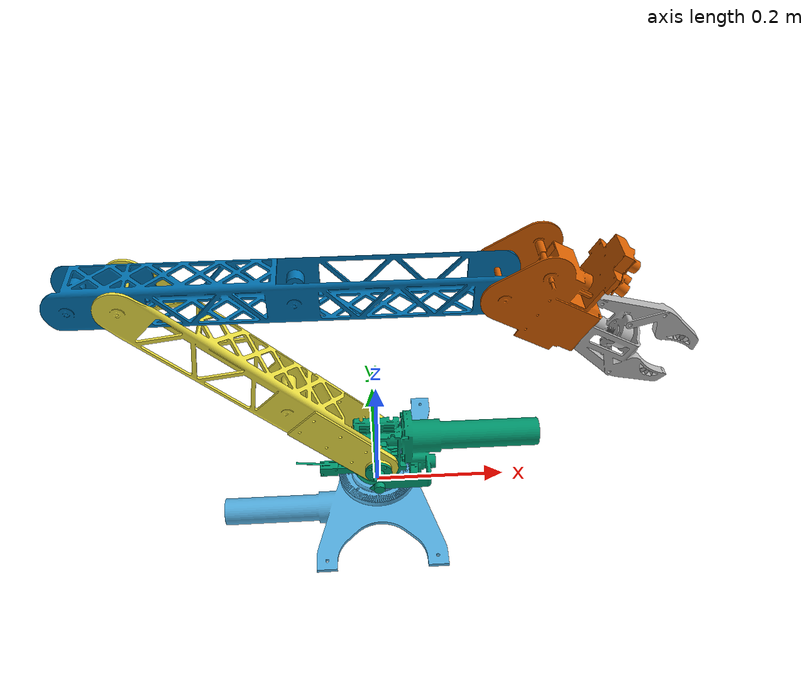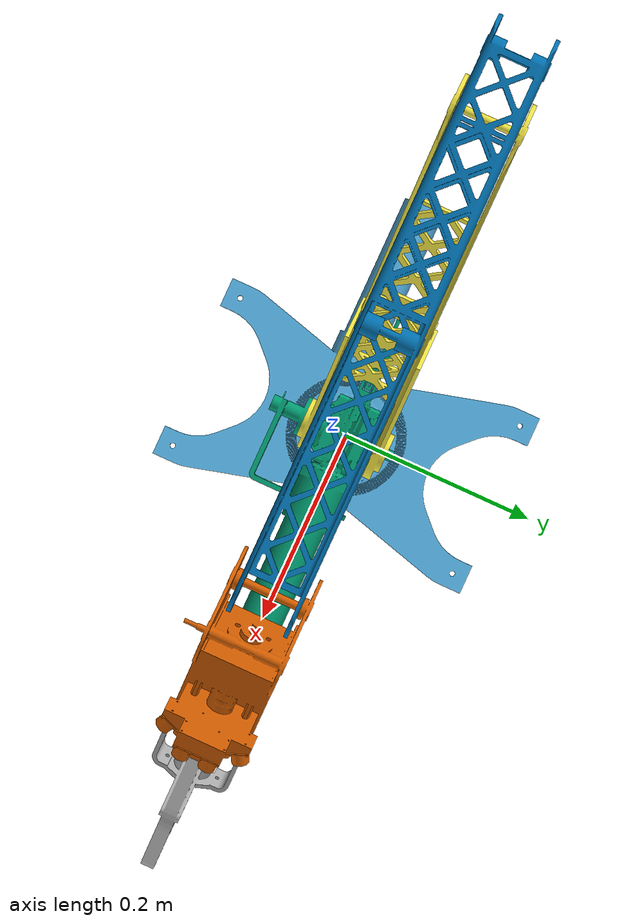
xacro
<?xml version="1.0" encoding="utf-8"?>
<robot xmlns:xacro="http://www.ros.org/wiki/xacro" name="5DOF">
  <xacro:property name="package" value="sirius_description" />

  <xacro:property name="base_length" value="0.006" />
  <xacro:property name="cyl_length" value="0.0655" />
  <xacro:property name="arm1_length" value="0.43498" />
  <xacro:property name="arm2_length" value="0.5236" />
  <xacro:property name="arm2_lever" value="0.0586" />
  <xacro:property name="arm3_length" value="0.129" />
  <xacro:property name="tool_length" value="0.18" />
  <xacro:property name="base_size_x" value="0.2" />

  <xacro:property name="arm1_home_angle" value="-0.7853981633974483"/>
  <xacro:property name="arm2_home_angle" value="2.356194490192345"/>
  <xacro:property name="arm3_home_angle" value="0.5"/>

  <!-- Minimal inertia for Gazebo simulation — physically plausible box estimates. -->
  <xacro:macro name="box_inertia" params="m x y z">
    <inertial>
      <mass value="${m}"/>
      <inertia ixx="${m*(y*y+z*z)/12}" ixy="0" ixz="0"
               iyy="${m*(x*x+z*z)/12}" iyz="0"
               izz="${m*(x*x+y*y)/12}"/>
    </inertial>
  </xacro:macro>

  <link name="root_link">
  </link>
  <joint name="root_base" type="fixed">
    <parent link="root_link"/>
    <child link="manipulator_base_link"/>
  </joint>

  <link name="manipulator_base_link">
    <visual>
      <origin xyz="0 0 0" rpy="0 0 0" />
      <geometry>
        <mesh filename="package://${package}/meshes/manipulators/5DOF/base.stl" scale="0.001 0.001 0.001"/>
      </geometry>
    </visual>
    <xacro:box_inertia m="0.5" x="0.20" y="0.20" z="0.06"/>
  </link>

  <joint name="waist" type="continuous">
    <parent link="manipulator_base_link"/>
    <child link="cylinder"/>
    <origin xyz="0 0 ${base_length}"/>
    <axis xyz="0 0 1"/>
  </joint>

  <link name="cylinder">
    <visual>
      <origin xyz="0 0 0" rpy="0 0 0" />
      <geometry>
        <mesh filename="package://${package}/meshes/manipulators/5DOF/cyl.stl" scale="0.001 0.001 0.001"/>
      </geometry>
    </visual>
    <xacro:box_inertia m="0.2" x="0.08" y="0.08" z="${cyl_length}"/>
  </link>

  <joint name="shoulder" type="revolute">
    <parent link="cylinder"/>
    <child link="arm1"/>
    <origin xyz="0 0 ${cyl_length}" rpy="0 ${arm1_home_angle} 0"/>
    <axis xyz="0 1 0"/>
    <limit
      lower="${-1.45 - arm1_home_angle}"
      upper="${1.45 - arm1_home_angle}"
      effort="10"
      velocity="5" />
  </joint>

  <link name="arm1">
    <visual>
      <origin xyz="0 0 0" rpy="0 0 0" />
      <geometry>
        <mesh filename="package://${package}/meshes/manipulators/5DOF/arm1.stl" scale="0.001 0.001 0.001"/>
      </geometry>
    </visual>
    <xacro:box_inertia m="0.8" x="0.05" y="0.05" z="${arm1_length}"/>
  </link>

  <joint name="elbow" type="revolute">
    <parent link="arm1"/>
    <child link="arm2"/>
    <origin xyz="0 0 ${arm1_length}" rpy="0 ${arm2_home_angle} 0"/>
    <axis xyz="0 1 0"/>
    <limit
      lower="-1.6"
      upper="0.0"
      effort="100"
      velocity="50" />
  </joint>

  <link name="arm2">
    <visual>
      <origin xyz="0 0 0" rpy="0 0 0" />
      <geometry>
        <mesh filename="package://${package}/meshes/manipulators/5DOF/arm2.stl" scale="0.001 0.001 0.001"/>
      </geometry>
    </visual>
    <xacro:box_inertia m="0.6" x="0.05" y="0.05" z="${arm2_length}"/>
  </link>

  <joint name="wrist_lift" type="revolute">
    <parent link="arm2"/>
    <child link="arm3"/>
    <origin xyz="0 0 ${arm2_length - arm2_lever}" rpy="0 ${arm3_home_angle} 0"/>
    <axis xyz="0 1 0"/>
    <limit
      lower="-1.57"
      upper="0"
      effort="100"
      velocity="50" />
  </joint>

  <link name="arm3">
    <visual>
      <origin xyz="0 0 0" rpy="0 0 0" />
      <geometry>
        <mesh filename="package://${package}/meshes/manipulators/5DOF/arm3.stl" scale="0.001 0.001 0.001"/>
      </geometry>
    </visual>
    <xacro:box_inertia m="0.2" x="0.05" y="0.05" z="${arm3_length}"/>
  </link>

  <joint name="wrist_turn" type="continuous">
    <parent link="arm3"/>
    <child link="fake"/>
    <origin xyz="0 0 ${arm3_length}"/>
    <axis xyz="1 0 0"/>
  </joint>

  <link name="fake">
    <xacro:box_inertia m="0.01" x="0.02" y="0.02" z="0.02"/>
  </link>

  <joint name="wrist_spin" type="continuous">
    <parent link="fake"/>
    <child link="tool"/>
    <origin xyz="0 0 0"/>
    <axis xyz="0 0 1"/>
  </joint>

  <link name="tool">
    <visual>
      <origin xyz="0 0 0" rpy="0 0 0" />
      <geometry>
        <mesh filename="package://${package}/meshes/manipulators/5DOF/tool.stl" scale="0.001 0.001 0.001"/>
      </geometry>
    </visual>
    <xacro:box_inertia m="0.3" x="0.10" y="0.10" z="${tool_length}"/>
  </link>

  <link name="virtual">
  </link>

  <joint name="tool_virtual" type="fixed">
    <parent link="tool"/>
    <child link="virtual"/>
    <origin xyz="0 0 ${tool_length}"/>
  </joint>

</robot>
